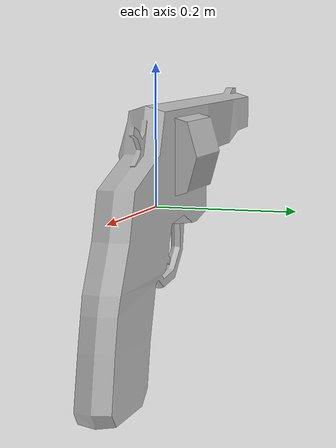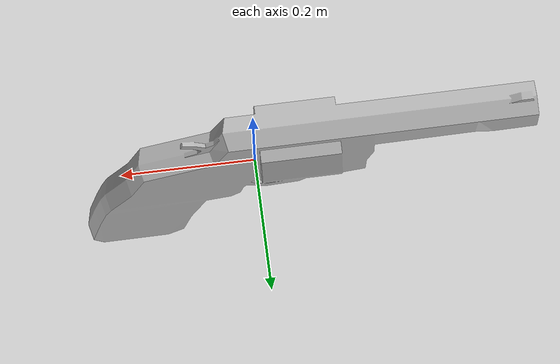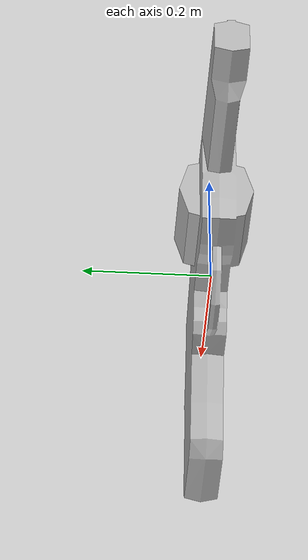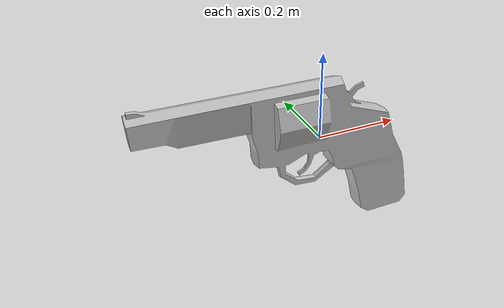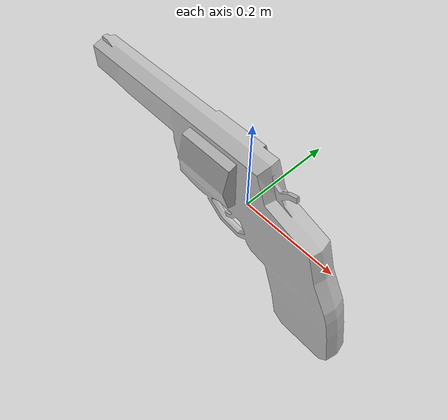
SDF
<?xml version="1.0" ?>
<sdf version="1.6">
 <model name="Gun_dae">
  <pose>0 0 0 0 0 0</pose>
  <static>true</static>
  <link name="link">
    <collision name="collision">
      <geometry>
        <mesh>
          <uri>model://Gun_dae/meshes/Gun.dae</uri>
        </mesh>
      </geometry>
    </collision>
    <visual name="visual">
      <geometry>
        <mesh>
          <uri>model://Gun_dae/meshes/Gun.dae</uri>
        </mesh>
      </geometry>
    </visual>
  </link>
 </model>
</sdf>
